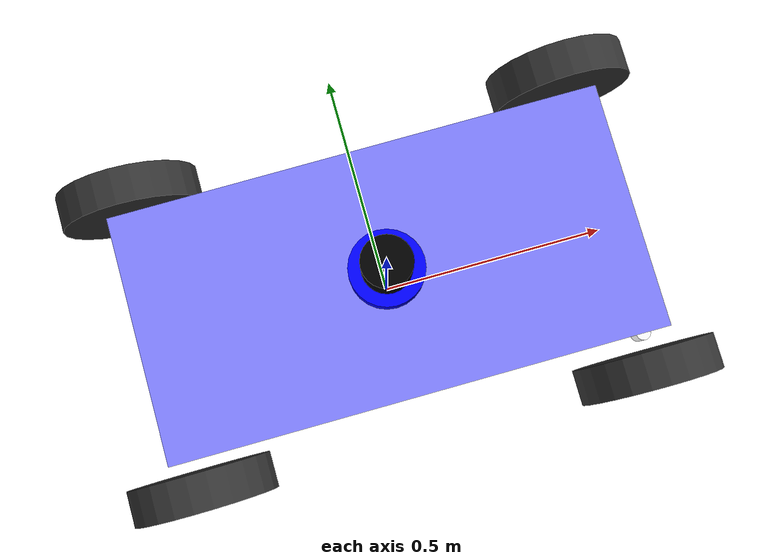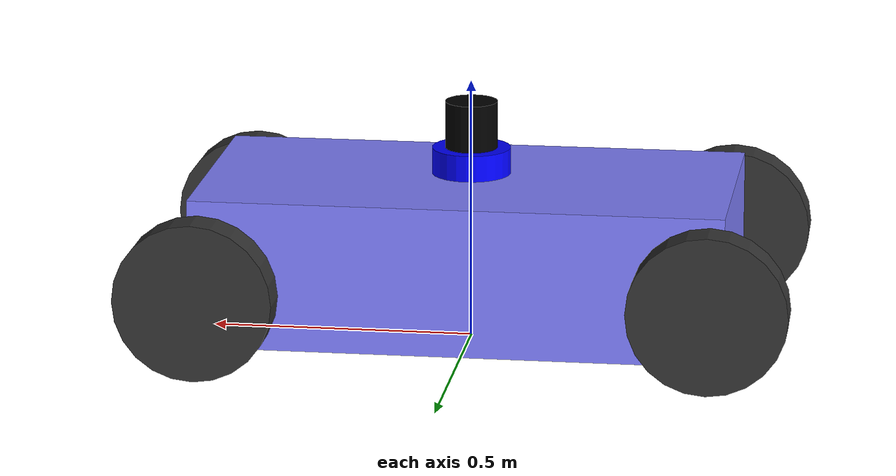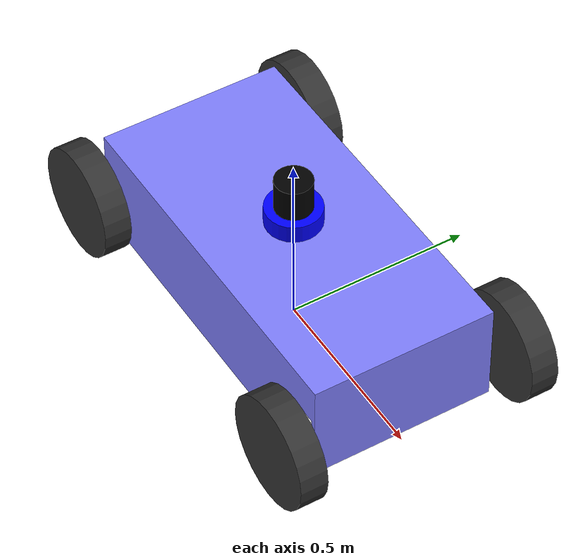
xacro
<?xml version="1.0"?>
<robot name="ackermann_bot">

  <!-- base_link -->
  <link name="base_footprint"/>

  <link name="base_link">
    <visual>
      <origin xyz="0 0 0" rpy="0 0 0"/>
      <geometry>
         <box size="1.00571 0.5 0.284363"/>
      </geometry>
      <material name="blue">
        <color rgba="0.5 0.5 1.0 1"/>
      </material>
    </visual>
    <collision>
      <origin xyz="0 0 0" rpy="0 0 0"/>
      <geometry>
         <box size="1.00571 0.5 0.284363"/>
      </geometry>
    </collision>
    <inertial>
      <origin xyz="0 0 0" rpy="0 0 0"/>
      <mass value="20.14395"/>
      <inertia ixx="0.975" ixy="0" ixz="0"
         iyy="1.5"   iyz="0"
         izz="1.875"/>
    </inertial>
  </link>
  <joint name="base_joint" type="fixed">
    <origin xyz="0.0 0.0 0.1713" rpy="0.0 0.0 0.0"/>
    <parent link="base_footprint"/>
    <child link="base_link"/>
  </joint>

  <!-- Steering links -->
  <link name="front_left_wheel_steering_link">
    <visual>
      <origin xyz="0 0 0" rpy="0 0 0"/>
      <geometry>
         <cylinder length="0.05" radius="0.015"/>
      </geometry>
      <material name="white">
        <color rgba="1 1 1 1"/>
      </material>
    </visual>
    <inertial>
      <origin xyz="0 0 0" rpy="0 0 0"/>
      <mass value="0.5"/>
      <inertia ixx="7.2593E-07" ixy="4.1844E-21" ixz="-6.4509E-22" iyy="4.2983E-07" iyz="1.0174E-21" izz="7.4729E-07"/>
    </inertial>
  </link>

  <link name="front_right_wheel_steering_link">
    <visual>
      <geometry>
         <cylinder length="0.05" radius="0.015"/>
      </geometry>
      <material name="white">
        <color rgba="1 1 1 1"/>
      </material>
    </visual>
    <inertial>
      <mass value="0.5"/>
      <inertia ixx="7.2593E-07" ixy="4.1844E-21" ixz="-6.4509E-22" iyy="4.2983E-07" iyz="1.0174E-21" izz="7.4729E-07"/>
    </inertial>
  </link>

  <!-- Wheels -->
  <link name="front_left_wheel">
    <visual>
      <geometry>
         <cylinder radius="0.15" length="0.075"/>
      </geometry>
      <material name="black">
        <color rgba="0.2 0.2 0.2 1"/>
      </material>
    </visual>
    <collision>
      <geometry>
         <cylinder radius="0.15" length="0.075"/>
      </geometry>
    </collision>
    <inertial>
      <mass value="2"/>
      <inertia ixx="0.0010103" ixy="0" ixz="-2.5358E-36" iyy="0.0019302" iyz="2.351E-36" izz="0.0010103"/>
    </inertial>
  </link>

  <link name="front_right_wheel">
    <visual>
      <geometry>
         <cylinder radius="0.15" length="0.075"/>
      </geometry>
      <material name="black">
        <color rgba="0.2 0.2 0.2 1"/>
      </material>
    </visual>
    <collision>
      <geometry>
         <cylinder radius="0.15" length="0.075"/>
      </geometry>
    </collision>
    <inertial>
      <mass value="2"/>
      <inertia ixx="0.0010103" ixy="0" ixz="-2.5358E-36" iyy="0.0019302" iyz="2.351E-36" izz="0.0010103"/>
    </inertial>
  </link>

  <link name="rear_left_wheel">
    <visual>
      <geometry>
         <cylinder radius="0.15" length="0.075"/>
      </geometry>
      <material name="black">
        <color rgba="0.2 0.2 0.2 1"/>
      </material>
    </visual>
    <collision>
      <geometry>
         <cylinder radius="0.15" length="0.075"/>
      </geometry>
    </collision>
    <inertial>
      <mass value="2"/>
      <inertia ixx="0.0010103" ixy="0" ixz="-2.5358E-36" iyy="0.0019302" iyz="2.351E-36" izz="0.0010103"/>
    </inertial>
  </link>

  <link name="rear_right_wheel">
    <visual>
      <geometry>
         <cylinder radius="0.15" length="0.075"/>
      </geometry>
      <material name="black">
        <color rgba="0.2 0.2 0.2 1"/>
      </material>
    </visual>
    <collision>
      <geometry>
         <cylinder radius="0.15" length="0.075"/>
      </geometry>
    </collision>
    <inertial>
      <mass value="2"/>
      <inertia ixx="0.0010103" ixy="0" ixz="-2.5358E-36" iyy="0.0019302" iyz="2.351E-36" izz="0.0010103"/>
    </inertial>
  </link>
  <link name="lidar_link">
        <inertial>
            <origin xyz="0.0 0.0 0.0" rpy="0.0 0.0 0.0"/>
            <mass value="0.05"/>
            <inertia ixx="0.001" ixy="0.0" ixz="0.0" iyy="0.001" iyz="0.0" izz="0.001"/>
        </inertial>
        <visual>
            <origin xyz="0.0 0.0 0.0" rpy="0.0 0.0 0.0"/>
            <geometry>
                 <cylinder radius="0.075" length="0.05"/>
            </geometry>
            <material name="lidar_blue">
                 <color rgba="0.0 0.0 1.0 1"/>
            </material>
        </visual>
        <collision>
            <origin xyz="0.0 0.0 0.0" rpy="0.0 0.0 0.0"/>
            <geometry>
                <cylinder radius="0.075" length="0.05"/>
            </geometry>
        </collision>
    </link>

    <link name="camera_link">
        <inertial>
            <origin xyz="0.0 0.0 0.0" rpy="0.0 0.0 0.0"/>
            <mass value="0.05"/>
            <inertia ixx="0.001" ixy="0.0" ixz="0.0" iyy="0.001" iyz="0.0" izz="0.001"/>
        </inertial>
        <visual>
            <origin xyz="0.0 0.0 0.0" rpy="0.0 0.0 0.0"/>
            <geometry>
                <cylinder radius="0.05" length="0.1"/>
            </geometry>
            <material name="camera">
                <color rgba="0.0 0.0 0.0 1"/>
            </material>
        </visual>
        <collision>
            <origin xyz="0.0 0.0 0.0" rpy="0.0 0.0 0.0"/>
            <geometry>
                <cylinder radius="0.03" length="0.04"/>
            </geometry>
        </collision>
    </link>

  <!-- Joints -->
  <joint name="front_left_wheel_steering_joint" type="revolute">
    <parent link="base_link"/>
    <child link="front_left_wheel_steering_link"/>
      <origin xyz="0.475 0.25 0.01" rpy="0 0 0"/>
    <axis xyz="0 0 1"/>
    <limit lower="-0.43" upper="0.43" effort="100" velocity="1.0"/>
  </joint>

  <joint name="front_right_wheel_steering_joint" type="revolute">
    <parent link="base_link"/>
    <child link="front_right_wheel_steering_link"/>
    <origin xyz="0.475 -0.25 0.01" rpy="0 0 0"/>
    <axis xyz="0 0 1"/>
    <limit lower="-0.43" upper="0.43" effort="100" velocity="1.0"/>
  </joint>

  <joint name="front_left_wheel_joint" type="continuous">
    <parent link="front_left_wheel_steering_link"/>
    <child link="front_left_wheel"/>
    <origin xyz="0.0 0.075 -0.035" rpy="-1.5707 0 0"/>
    <axis xyz="0 0 1"/>
  </joint>

  <joint name="front_right_wheel_joint" type="continuous">
    <parent link="front_right_wheel_steering_link"/>
    <child link="front_right_wheel"/>
    <origin xyz="0.0 -0.075 -0.035" rpy="-1.5707 0 0"/>
    <axis xyz="0 0 1"/>
  </joint>

  <joint name="rear_left_wheel_joint" type="continuous">
    <parent link="base_link"/>
    <child link="rear_left_wheel"/>
    <origin xyz="-0.478569 0.3125145 -0.0175" rpy="-1.5707 0 0"/>
    <axis xyz="0 0 1"/>
  </joint>

  <joint name="rear_right_wheel_joint" type="continuous">
    <parent link="base_link"/>
    <child link="rear_right_wheel"/>
    <origin xyz="-0.478569 -0.3125145 -0.0175" rpy="-1.5707 0 0"/>
    <axis xyz="0 0 1"/>
  </joint>
  <joint name="lidar_link_joint" type="fixed">
        <origin xyz="0.0 0.0 0.175" rpy="0.0 -0.0 0.0" />
        <parent link="base_link" />
        <child link="lidar_link" />
    </joint>
    <joint name="camera_link_joint" type="fixed">
        <origin xyz="0.0 0.0 0.24" rpy="0.0 0.0 0.0" />
        <parent link="base_link" />
        <child link="camera_link" />
    </joint>

    <!-- >>>>>>>>>>>>>>>>>>>>>>>>>>>>>>>>>> Plugins And Sensors <<<<<<<<<<<<<<<<<<<<<<<<<<<<<<<<<<<<<<<<<<< -->

    <gazebo>
        <plugin name="ignition::gazebo::systems::JointStatePublisher" filename="libignition-gazebo-joint-state-publisher-system">
            <topic>/joint_states</topic>
            <update_rate>60</update_rate>
        </plugin>
    </gazebo>

    <gazebo>
        <plugin
          filename="libignition-gazebo-sensors-system.so"
          name="ignition::gazebo::systems::Sensors">
          <render_engine>ogre2</render_engine>
        </plugin>
    </gazebo>

<!-- Lidar Sensor -->
    <gazebo reference="lidar_link">
        <sensor name="lidar_3d" type ="gpu_ray">
            <topic>/scan</topic>
            <ignition_frame_id>lidar_link</ignition_frame_id>
            <always_on>true</always_on>
            <visualize>true</visualize>
            <update_rate>10.0</update_rate>
            <ray>
                <scan>
                    <horizontal>
                        <samples>270</samples>
                        <resolution>1.0</resolution>
                        <min_angle>-2.35619</min_angle>
                        <max_angle>2.35619</max_angle>
                    </horizontal>
                </scan>
                <range>
                    <min>0.12</min>
                    <max>12.0</max>
                    <resolution>0.015</resolution>
                </range>
                <noise>
                    <type>gaussian</type>
                    <mean>0.0</mean>
                    <stddev>0.01</stddev>
                </noise>
            </ray>
        </sensor>
    </gazebo>

<!-- IMU Sensor -->
    <gazebo reference="lidar_link">
        <gravity>true</gravity>
        <sensor name="imu_sensor" type="imu">
            <ignition_frame_id>lidar_link</ignition_frame_id>
            <always_on>true</always_on>
            <update_rate>100</update_rate>
            <visualize>true</visualize>
            <topic>IMU</topic>
            <imu>
                <angular_velocity>
                <x>0.0002</x>
                <y>0.0002</y>
                <z>0.0002</z>
                </angular_velocity>
                <linear_acceleration>
                <x>0.0003</x>
                <y>0.0003</y>
                <z>0.0003</z>
                </linear_acceleration>
            </imu>
            <plugin name="ignition::gazebo::systems::Imu" filename="libignition-gazebo-imu-system.so"/>
            </sensor>
    </gazebo>

<!-- 3D lidar sensor -->

<!-- Camera Sensor -->
    <gazebo reference="camera_link">
        <sensor name="depth_camera" type="rgbd_camera">
            <topic>depth_camera</topic>
            <ignition_frame_id>camera_link</ignition_frame_id>
            <always_on>true</always_on>
            <visualize>true</visualize>
            <update_rate>5.0</update_rate>
            <frame_id>camera_link</frame_id>
            <camera>
            <horizontal_fov>1.047198</horizontal_fov>
            <image>
                <width>640</width>
                <height>480</height>
            </image>
            <clip>
                <near>0.05</near>
                <far>3</far>
            </clip>
            </camera>
            <baseline>0.2</baseline>
            <pointCloudCutoff>0.5</pointCloudCutoff>
            <pointCloudCutoffMax>3.0</pointCloudCutoffMax>
            <distortionK1>0</distortionK1>
            <distortionK2>0</distortionK2>
            <distortionK3>0</distortionK3>
            <distortionT1>0</distortionT1>
            <distortionT2>0</distortionT2>
            <CxPrime>0</CxPrime>
            <Cx>0</Cx>
            <Cy>0</Cy>
            <focalLength>0</focalLength>
            <hackBaseline>0</hackBaseline>
          </sensor>
    </gazebo>

  <!-- Gazebo Ackermann Plugin -->
  <gazebo>
      <plugin filename="libignition-gazebo-ackermann-steering-system.so"
              name="ignition::gazebo::systems::AckermannSteering">
      <topic>/cmd_vel</topic>
      <left_joint>front_left_wheel_joint</left_joint>
      <left_joint>rear_left_wheel_joint</left_joint>
      <right_joint>front_right_wheel_joint</right_joint>
      <right_joint>rear_right_wheel_joint</right_joint>
      <left_steering_joint>front_left_wheel_steering_joint</left_steering_joint>
      <right_steering_joint>front_right_wheel_steering_joint</right_steering_joint>
      <kingpin_width>1.0</kingpin_width>
      <steering_limit>0.5</steering_limit>
      <wheel_base>0.50</wheel_base>
      <wheel_separation>0.63</wheel_separation>
      <wheel_radius>0.15</wheel_radius>
      <min_velocity>-1</min_velocity>
      <max_velocity>1</max_velocity>
      <min_acceleration>-3</min_acceleration>
      <max_acceleration>3</max_acceleration>
      <odom_frame>odom</odom_frame>
      <robot_base_frame>base_footprint</robot_base_frame>
    </plugin>
  </gazebo>

  <gazebo>
  <plugin filename="ignition-gazebo-odometry-publisher-system" name="ignition::gazebo::systems::OdometryPublisher">
    <odom_frame>odom</odom_frame>
    <robot_base_frame>base_footprint</robot_base_frame>
    <topic>/odom</topic>
    <left_joint>front_left_wheel_joint</left_joint>
    <left_joint>rear_left_wheel_joint</left_joint>
    <right_joint>front_right_wheel_joint</right_joint>
    <right_joint>rear_right_wheel_joint</right_joint>
    <left_steering_joint>front_left_wheel_steering_joint</left_steering_joint>
    <right_steering_joint>front_right_wheel_steering_joint</right_steering_joint>
    <kingpin_width>1.0</kingpin_width>
    <steering_limit>0.5</steering_limit>
    <wheel_base>0.50</wheel_base>
    <publish_tf>true</publish_tf>
    <odom_publish_frequency>60</odom_publish_frequency>
    <tf_topic>/tf</tf_topic>
    <publish_rate>30</publish_rate>
  </plugin>
    </gazebo>

</robot>
